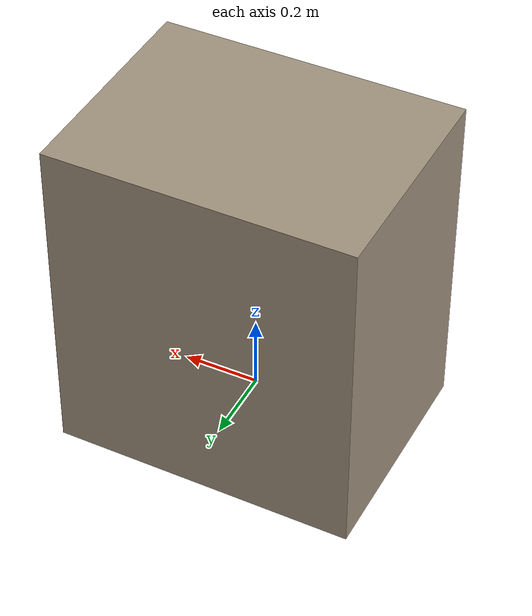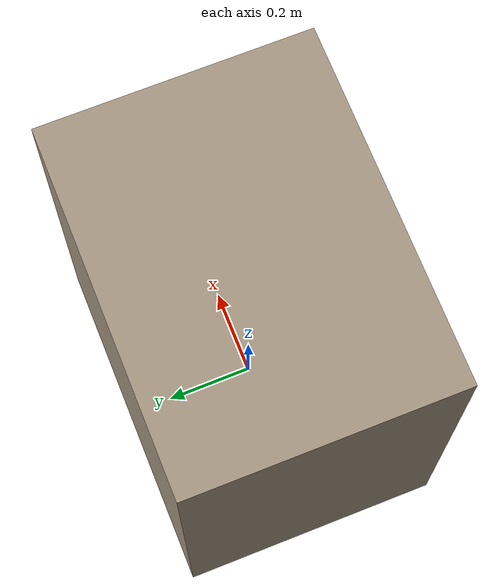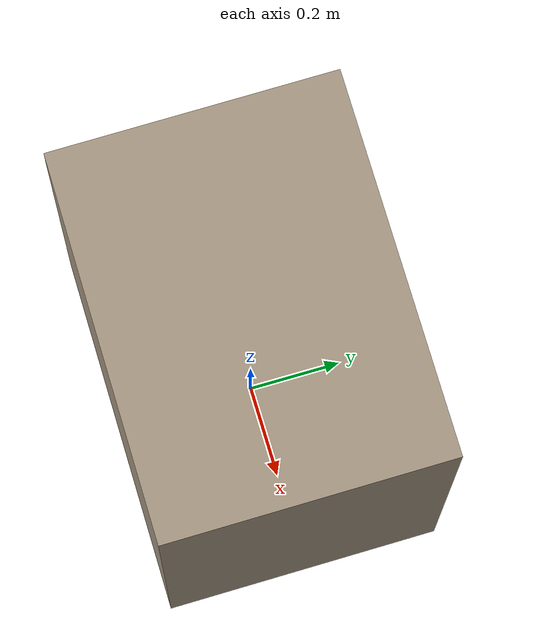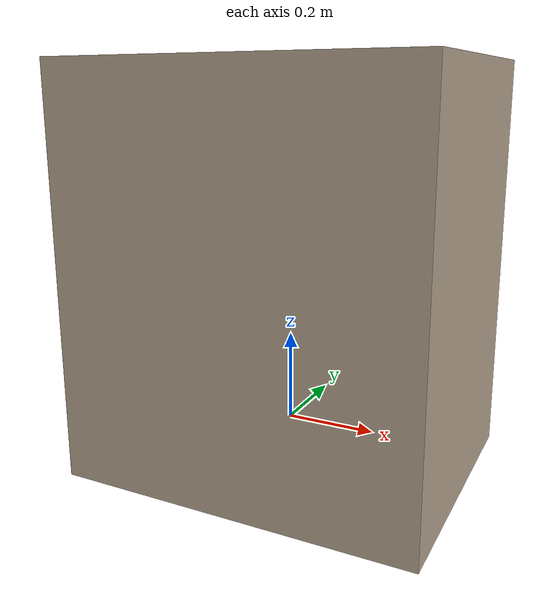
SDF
<?xml version='1.0' encoding='utf-8'?>
<sdf version="1.6">
  <model name="aws_robomaker_warehouse_ClutteringA_01">
    <static>true</static>
    <link name="link">
      <collision name="collision_1">
        <pose>0 0 0.35 0 0 0</pose>
        <geometry>
          <box>
            <size>0.8 0.6 0.9</size>
          </box>
        </geometry>
      </collision>
      <visual name="visual_1">
        <pose>0 0 0.35 0 0 0</pose>
        <geometry>
          <box>
            <size>0.8 0.6 0.9</size>
          </box>
        </geometry>
        <material>
          <ambient>0.64 0.58 0.5 1</ambient>
          <diffuse>0.64 0.58 0.5 1</diffuse>
          <specular>0.08 0.08 0.08 1</specular>
        </material>
      </visual>
    </link>
  </model>
</sdf>
